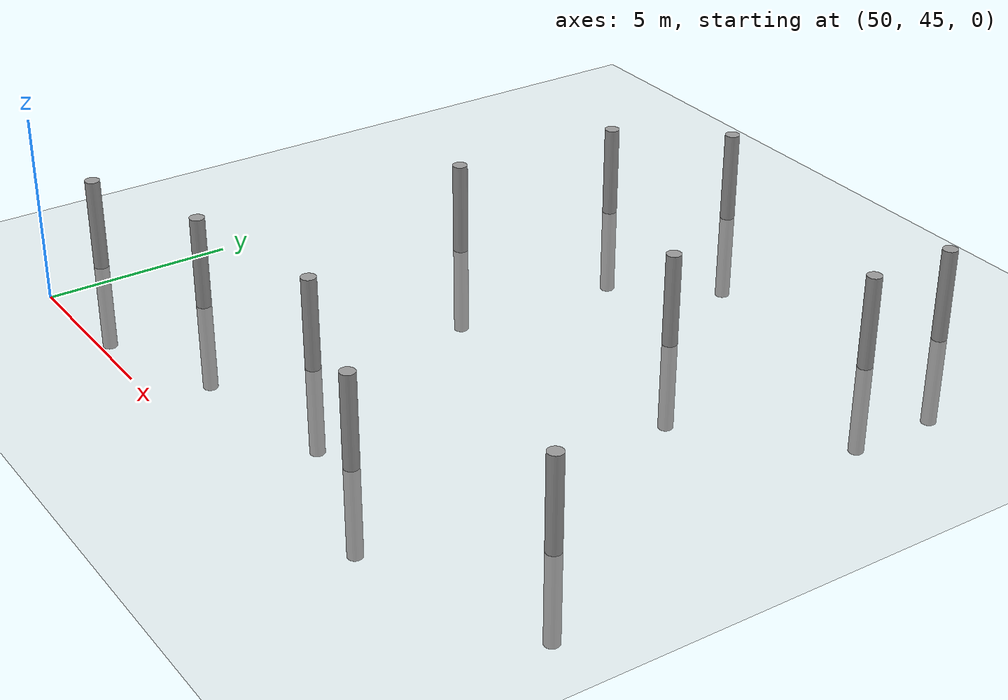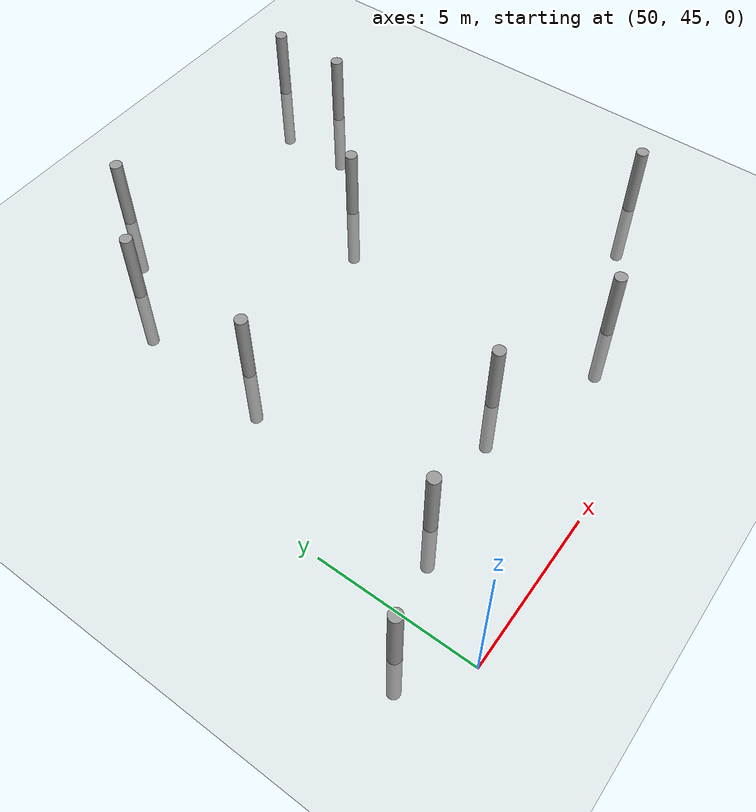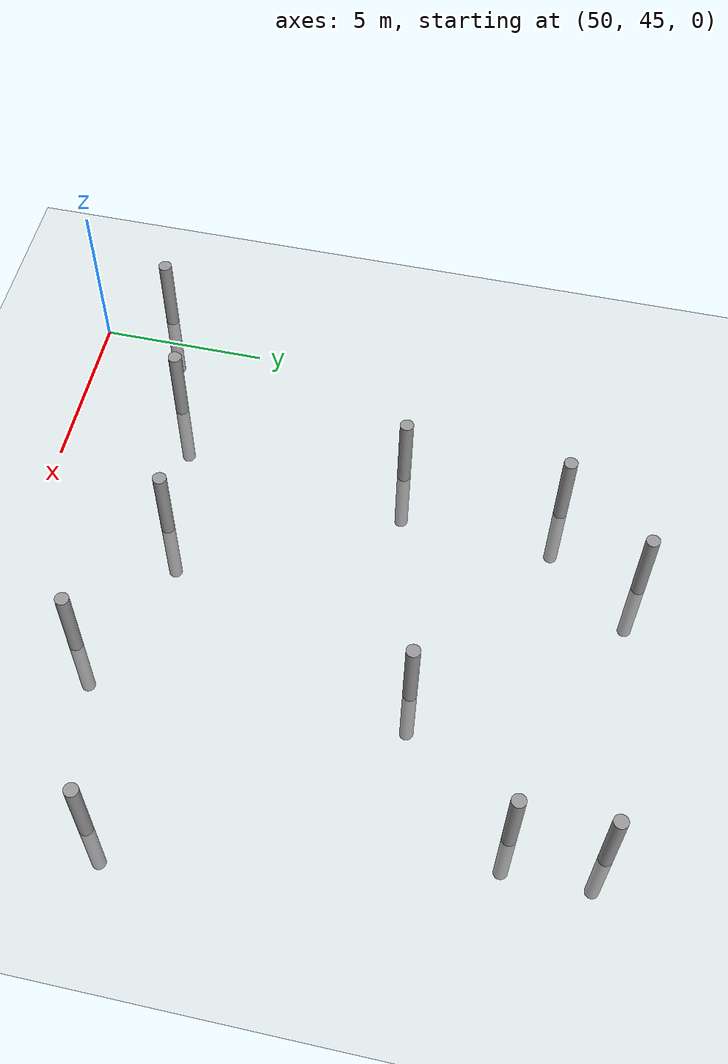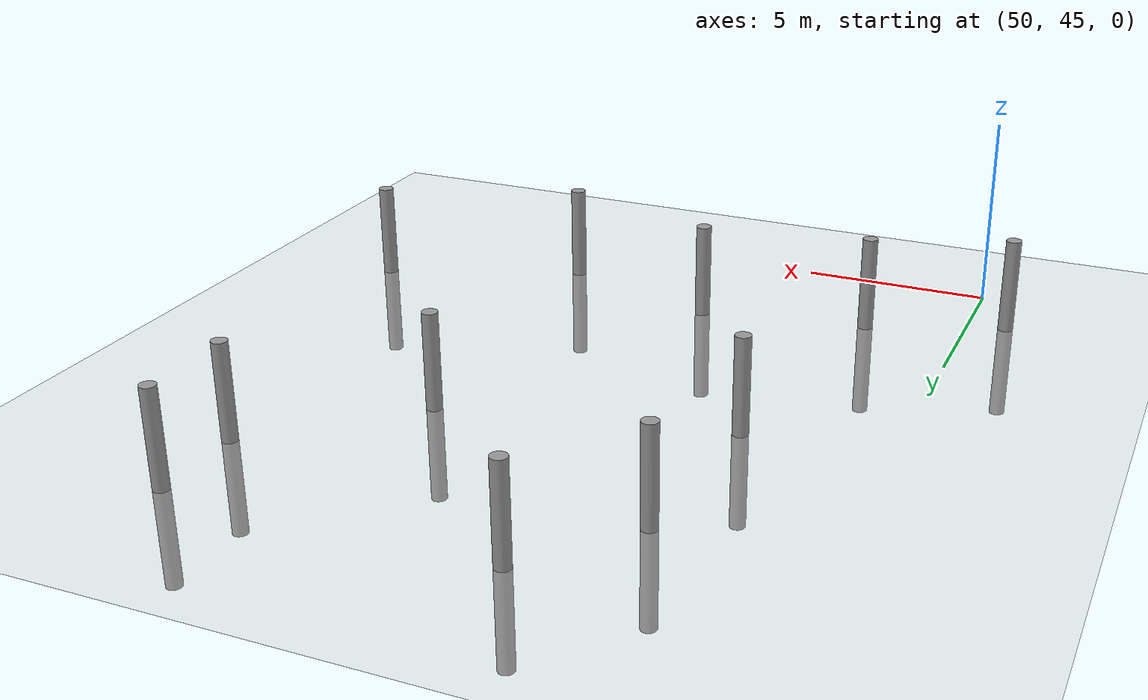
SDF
<sdf version="1.6">
 <world name="default">
  <model name="ground_plane">
   <static>1</static>
   <link name="link">
    <collision name="collision">
     <geometry><plane><normal>0 0 1</normal><size>100 100</size></plane></geometry>
     <surface><friction><ode><mu>100</mu><mu2>50</mu2></ode></friction></surface>
    </collision>
    <visual name="visual">
     <cast_shadows>0</cast_shadows>
     <geometry><plane><normal>0 0 1</normal><size>100 100</size></plane></geometry>
     <material>
      <script><uri>file://media/materials/scripts/gazebo.material</uri><name>Gazebo/Grey</name></script>
     </material>
    </visual>
   </link>
  </model>
  <model name="empty_pillars_2">
   <model name="empty_pillar_clone_13">
    <link name="link">
     <inertial>
      <mass>1</mass>
      <inertia><ixx>0.145833</ixx><ixy>0</ixy><ixz>0</ixz><iyy>0.145833</iyy><iyz>0</iyz><izz>0.125</izz></inertia>
     </inertial>
     <visual name="visual">
      <geometry><cylinder><radius>0.2</radius><length>5</length></cylinder></geometry>
      <material>
       <script><name>Gazebo/Grey</name><uri>file://media/materials/scripts/gazebo.material</uri></script>
       <shader type="vertex"><normal_map>__default__</normal_map></shader>
       <ambient>0.3 0.3 0.3 1</ambient>
       <diffuse>0.7 0.7 0.7 1</diffuse>
       <specular>0.01 0.01 0.01 1</specular>
       <emissive>0 0 0 1</emissive>
      </material>
     </visual>
     <collision name="collision">
      <geometry><cylinder><radius>0.05</radius><length>5</length></cylinder></geometry>
      <surface>
       <friction>
        <ode><mu>1</mu><mu2>1</mu2><fdir1>0 0 0</fdir1><slip1>0</slip1><slip2>0</slip2></ode>
        <torsional>
         <coefficient>1</coefficient>
         <patch_radius>0</patch_radius>
         <surface_radius>0</surface_radius>
         <use_patch_radius>1</use_patch_radius>
         <ode><slip>0</slip></ode>
        </torsional>
       </friction>
       <bounce><restitution_coefficient>0</restitution_coefficient><threshold>1e+06</threshold></bounce>
       <contact>
        <collide_without_contact>0</collide_without_contact>
        <collide_without_contact_bitmask>1</collide_without_contact_bitmask>
        <collide_bitmask>1</collide_bitmask>
        <ode>
         <soft_cfm>0</soft_cfm>
         <soft_erp>0.2</soft_erp>
         <kp>1e+13</kp>
         <kd>1</kd>
         <max_vel>0.01</max_vel>
         <min_depth>0</min_depth>
        </ode>
        <bullet>
         <split_impulse>1</split_impulse>
         <split_impulse_penetration_threshold>-0.01</split_impulse_penetration_threshold>
         <soft_cfm>0</soft_cfm>
         <soft_erp>0.2</soft_erp>
         <kp>1e+13</kp>
         <kd>1</kd>
        </bullet>
       </contact>
      </surface>
     </collision>
    </link>
    <static>0</static>
    <pose>-9.01464 -14.4259 0 0 -0 0</pose>
   </model>
   <model name="empty_pillar_clone_35">
    <link name="link">
     <inertial>
      <mass>1</mass>
      <inertia><ixx>0.145833</ixx><ixy>0</ixy><ixz>0</ixz><iyy>0.145833</iyy><iyz>0</iyz><izz>0.125</izz></inertia>
     </inertial>
     <visual name="visual">
      <geometry><cylinder><radius>0.2</radius><length>5</length></cylinder></geometry>
      <material>
       <script><name>Gazebo/Grey</name><uri>file://media/materials/scripts/gazebo.material</uri></script>
       <shader type="vertex"><normal_map>__default__</normal_map></shader>
       <ambient>0.3 0.3 0.3 1</ambient>
       <diffuse>0.7 0.7 0.7 1</diffuse>
       <specular>0.01 0.01 0.01 1</specular>
       <emissive>0 0 0 1</emissive>
      </material>
     </visual>
     <collision name="collision">
      <geometry><cylinder><radius>0.05</radius><length>5</length></cylinder></geometry>
      <surface>
       <friction>
        <ode><mu>1</mu><mu2>1</mu2><fdir1>0 0 0</fdir1><slip1>0</slip1><slip2>0</slip2></ode>
        <torsional>
         <coefficient>1</coefficient>
         <patch_radius>0</patch_radius>
         <surface_radius>0</surface_radius>
         <use_patch_radius>1</use_patch_radius>
         <ode><slip>0</slip></ode>
        </torsional>
       </friction>
       <bounce><restitution_coefficient>0</restitution_coefficient><threshold>1e+06</threshold></bounce>
       <contact>
        <collide_without_contact>0</collide_without_contact>
        <collide_without_contact_bitmask>1</collide_without_contact_bitmask>
        <collide_bitmask>1</collide_bitmask>
        <ode>
         <soft_cfm>0</soft_cfm>
         <soft_erp>0.2</soft_erp>
         <kp>1e+13</kp>
         <kd>1</kd>
         <max_vel>0.01</max_vel>
         <min_depth>0</min_depth>
        </ode>
        <bullet>
         <split_impulse>1</split_impulse>
         <split_impulse_penetration_threshold>-0.01</split_impulse_penetration_threshold>
         <soft_cfm>0</soft_cfm>
         <soft_erp>0.2</soft_erp>
         <kp>1e+13</kp>
         <kd>1</kd>
        </bullet>
       </contact>
      </surface>
     </collision>
    </link>
    <static>0</static>
    <pose>-19.4431 -17.0281 0 0 -0 0</pose>
   </model>
   <model name="empty_pillar_clone_40">
    <link name="link">
     <inertial>
      <mass>1</mass>
      <inertia><ixx>0.145833</ixx><ixy>0</ixy><ixz>0</ixz><iyy>0.145833</iyy><iyz>0</iyz><izz>0.125</izz></inertia>
     </inertial>
     <visual name="visual">
      <geometry><cylinder><radius>0.2</radius><length>5</length></cylinder></geometry>
      <material>
       <script><name>Gazebo/Grey</name><uri>file://media/materials/scripts/gazebo.material</uri></script>
       <shader type="vertex"><normal_map>__default__</normal_map></shader>
       <ambient>0.3 0.3 0.3 1</ambient>
       <diffuse>0.7 0.7 0.7 1</diffuse>
       <specular>0.01 0.01 0.01 1</specular>
       <emissive>0 0 0 1</emissive>
      </material>
     </visual>
     <collision name="collision">
      <geometry><cylinder><radius>0.05</radius><length>5</length></cylinder></geometry>
      <surface>
       <friction>
        <ode><mu>1</mu><mu2>1</mu2><fdir1>0 0 0</fdir1><slip1>0</slip1><slip2>0</slip2></ode>
        <torsional>
         <coefficient>1</coefficient>
         <patch_radius>0</patch_radius>
         <surface_radius>0</surface_radius>
         <use_patch_radius>1</use_patch_radius>
         <ode><slip>0</slip></ode>
        </torsional>
       </friction>
       <bounce><restitution_coefficient>0</restitution_coefficient><threshold>1e+06</threshold></bounce>
       <contact>
        <collide_without_contact>0</collide_without_contact>
        <collide_without_contact_bitmask>1</collide_without_contact_bitmask>
        <collide_bitmask>1</collide_bitmask>
        <ode>
         <soft_cfm>0</soft_cfm>
         <soft_erp>0.2</soft_erp>
         <kp>1e+13</kp>
         <kd>1</kd>
         <max_vel>0.01</max_vel>
         <min_depth>0</min_depth>
        </ode>
        <bullet>
         <split_impulse>1</split_impulse>
         <split_impulse_penetration_threshold>-0.01</split_impulse_penetration_threshold>
         <soft_cfm>0</soft_cfm>
         <soft_erp>0.2</soft_erp>
         <kp>1e+13</kp>
         <kd>1</kd>
        </bullet>
       </contact>
      </surface>
     </collision>
    </link>
    <static>0</static>
    <pose>-17.318 -14.4851 0 0 -0 0</pose>
   </model>
   <model name="empty_pillar_clone_42">
    <link name="link">
     <inertial>
      <mass>1</mass>
      <inertia><ixx>0.145833</ixx><ixy>0</ixy><ixz>0</ixz><iyy>0.145833</iyy><iyz>0</iyz><izz>0.125</izz></inertia>
     </inertial>
     <visual name="visual">
      <geometry><cylinder><radius>0.2</radius><length>5</length></cylinder></geometry>
      <material>
       <script><name>Gazebo/Grey</name><uri>file://media/materials/scripts/gazebo.material</uri></script>
       <shader type="vertex"><normal_map>__default__</normal_map></shader>
       <ambient>0.3 0.3 0.3 1</ambient>
       <diffuse>0.7 0.7 0.7 1</diffuse>
       <specular>0.01 0.01 0.01 1</specular>
       <emissive>0 0 0 1</emissive>
      </material>
     </visual>
     <collision name="collision">
      <geometry><cylinder><radius>0.05</radius><length>5</length></cylinder></geometry>
      <surface>
       <friction>
        <ode><mu>1</mu><mu2>1</mu2><fdir1>0 0 0</fdir1><slip1>0</slip1><slip2>0</slip2></ode>
        <torsional>
         <coefficient>1</coefficient>
         <patch_radius>0</patch_radius>
         <surface_radius>0</surface_radius>
         <use_patch_radius>1</use_patch_radius>
         <ode><slip>0</slip></ode>
        </torsional>
       </friction>
       <bounce><restitution_coefficient>0</restitution_coefficient><threshold>1e+06</threshold></bounce>
       <contact>
        <collide_without_contact>0</collide_without_contact>
        <collide_without_contact_bitmask>1</collide_without_contact_bitmask>
        <collide_bitmask>1</collide_bitmask>
        <ode>
         <soft_cfm>0</soft_cfm>
         <soft_erp>0.2</soft_erp>
         <kp>1e+13</kp>
         <kd>1</kd>
         <max_vel>0.01</max_vel>
         <min_depth>0</min_depth>
        </ode>
        <bullet>
         <split_impulse>1</split_impulse>
         <split_impulse_penetration_threshold>-0.01</split_impulse_penetration_threshold>
         <soft_cfm>0</soft_cfm>
         <soft_erp>0.2</soft_erp>
         <kp>1e+13</kp>
         <kd>1</kd>
        </bullet>
       </contact>
      </surface>
     </collision>
    </link>
    <static>0</static>
    <pose>-12.5409 -20.2416 0 0 -0 0</pose>
   </model>
   <model name="empty_pillar_clone_43">
    <link name="link">
     <inertial>
      <mass>1</mass>
      <inertia><ixx>0.145833</ixx><ixy>0</ixy><ixz>0</ixz><iyy>0.145833</iyy><iyz>0</iyz><izz>0.125</izz></inertia>
     </inertial>
     <visual name="visual">
      <geometry><cylinder><radius>0.2</radius><length>5</length></cylinder></geometry>
      <material>
       <script><name>Gazebo/Grey</name><uri>file://media/materials/scripts/gazebo.material</uri></script>
       <shader type="vertex"><normal_map>__default__</normal_map></shader>
       <ambient>0.3 0.3 0.3 1</ambient>
       <diffuse>0.7 0.7 0.7 1</diffuse>
       <specular>0.01 0.01 0.01 1</specular>
       <emissive>0 0 0 1</emissive>
      </material>
     </visual>
     <collision name="collision">
      <geometry><cylinder><radius>0.05</radius><length>5</length></cylinder></geometry>
      <surface>
       <friction>
        <ode><mu>1</mu><mu2>1</mu2><fdir1>0 0 0</fdir1><slip1>0</slip1><slip2>0</slip2></ode>
        <torsional>
         <coefficient>1</coefficient>
         <patch_radius>0</patch_radius>
         <surface_radius>0</surface_radius>
         <use_patch_radius>1</use_patch_radius>
         <ode><slip>0</slip></ode>
        </torsional>
       </friction>
       <bounce><restitution_coefficient>0</restitution_coefficient><threshold>1e+06</threshold></bounce>
       <contact>
        <collide_without_contact>0</collide_without_contact>
        <collide_without_contact_bitmask>1</collide_without_contact_bitmask>
        <collide_bitmask>1</collide_bitmask>
        <ode>
         <soft_cfm>0</soft_cfm>
         <soft_erp>0.2</soft_erp>
         <kp>1e+13</kp>
         <kd>1</kd>
         <max_vel>0.01</max_vel>
         <min_depth>0</min_depth>
        </ode>
        <bullet>
         <split_impulse>1</split_impulse>
         <split_impulse_penetration_threshold>-0.01</split_impulse_penetration_threshold>
         <soft_cfm>0</soft_cfm>
         <soft_erp>0.2</soft_erp>
         <kp>1e+13</kp>
         <kd>1</kd>
        </bullet>
       </contact>
      </surface>
     </collision>
    </link>
    <static>0</static>
    <pose>-19.7613 -21.8307 0 0 -0 0</pose>
   </model>
   <model name="empty_pillar_clone_45">
    <link name="link">
     <inertial>
      <mass>1</mass>
      <inertia><ixx>0.145833</ixx><ixy>0</ixy><ixz>0</ixz><iyy>0.145833</iyy><iyz>0</iyz><izz>0.125</izz></inertia>
     </inertial>
     <visual name="visual">
      <geometry><cylinder><radius>0.2</radius><length>5</length></cylinder></geometry>
      <material>
       <script><name>Gazebo/Grey</name><uri>file://media/materials/scripts/gazebo.material</uri></script>
       <shader type="vertex"><normal_map>__default__</normal_map></shader>
       <ambient>0.3 0.3 0.3 1</ambient>
       <diffuse>0.7 0.7 0.7 1</diffuse>
       <specular>0.01 0.01 0.01 1</specular>
       <emissive>0 0 0 1</emissive>
      </material>
     </visual>
     <collision name="collision">
      <geometry><cylinder><radius>0.05</radius><length>5</length></cylinder></geometry>
      <surface>
       <friction>
        <ode><mu>1</mu><mu2>1</mu2><fdir1>0 0 0</fdir1><slip1>0</slip1><slip2>0</slip2></ode>
        <torsional>
         <coefficient>1</coefficient>
         <patch_radius>0</patch_radius>
         <surface_radius>0</surface_radius>
         <use_patch_radius>1</use_patch_radius>
         <ode><slip>0</slip></ode>
        </torsional>
       </friction>
       <bounce><restitution_coefficient>0</restitution_coefficient><threshold>1e+06</threshold></bounce>
       <contact>
        <collide_without_contact>0</collide_without_contact>
        <collide_without_contact_bitmask>1</collide_without_contact_bitmask>
        <collide_bitmask>1</collide_bitmask>
        <ode>
         <soft_cfm>0</soft_cfm>
         <soft_erp>0.2</soft_erp>
         <kp>1e+13</kp>
         <kd>1</kd>
         <max_vel>0.01</max_vel>
         <min_depth>0</min_depth>
        </ode>
        <bullet>
         <split_impulse>1</split_impulse>
         <split_impulse_penetration_threshold>-0.01</split_impulse_penetration_threshold>
         <soft_cfm>0</soft_cfm>
         <soft_erp>0.2</soft_erp>
         <kp>1e+13</kp>
         <kd>1</kd>
        </bullet>
       </contact>
      </surface>
     </collision>
    </link>
    <static>0</static>
    <pose>-9.01076 -16.9307 0 0 -0 0</pose>
   </model>
   <static>0</static>
   <pose>73.3006 77.2503 0 0 -0 0</pose>
  </model>
  <model name="empty_pillars_3">
   <model name="empty_pillar_clone_20">
    <link name="link">
     <inertial>
      <mass>1</mass>
      <inertia><ixx>0.145833</ixx><ixy>0</ixy><ixz>0</ixz><iyy>0.145833</iyy><iyz>0</iyz><izz>0.125</izz></inertia>
     </inertial>
     <visual name="visual">
      <geometry><cylinder><radius>0.2</radius><length>5</length></cylinder></geometry>
      <material>
       <script><name>Gazebo/Grey</name><uri>file://media/materials/scripts/gazebo.material</uri></script>
       <shader type="vertex"><normal_map>__default__</normal_map></shader>
       <ambient>0.3 0.3 0.3 1</ambient>
       <diffuse>0.7 0.7 0.7 1</diffuse>
       <specular>0.01 0.01 0.01 1</specular>
       <emissive>0 0 0 1</emissive>
      </material>
     </visual>
     <collision name="collision">
      <geometry><cylinder><radius>0.05</radius><length>5</length></cylinder></geometry>
      <surface>
       <friction>
        <ode><mu>1</mu><mu2>1</mu2><fdir1>0 0 0</fdir1><slip1>0</slip1><slip2>0</slip2></ode>
        <torsional>
         <coefficient>1</coefficient>
         <patch_radius>0</patch_radius>
         <surface_radius>0</surface_radius>
         <use_patch_radius>1</use_patch_radius>
         <ode><slip>0</slip></ode>
        </torsional>
       </friction>
       <bounce><restitution_coefficient>0</restitution_coefficient><threshold>1e+06</threshold></bounce>
       <contact>
        <collide_without_contact>0</collide_without_contact>
        <collide_without_contact_bitmask>1</collide_without_contact_bitmask>
        <collide_bitmask>1</collide_bitmask>
        <ode>
         <soft_cfm>0</soft_cfm>
         <soft_erp>0.2</soft_erp>
         <kp>1e+13</kp>
         <kd>1</kd>
         <max_vel>0.01</max_vel>
         <min_depth>0</min_depth>
        </ode>
        <bullet>
         <split_impulse>1</split_impulse>
         <split_impulse_penetration_threshold>-0.01</split_impulse_penetration_threshold>
         <soft_cfm>0</soft_cfm>
         <soft_erp>0.2</soft_erp>
         <kp>1e+13</kp>
         <kd>1</kd>
        </bullet>
       </contact>
      </surface>
     </collision>
    </link>
    <static>0</static>
    <pose>-13.0146 19.1597 0 0 -0 0</pose>
   </model>
   <model name="empty_pillar_clone_21">
    <link name="link">
     <inertial>
      <mass>1</mass>
      <inertia><ixx>0.145833</ixx><ixy>0</ixy><ixz>0</ixz><iyy>0.145833</iyy><iyz>0</iyz><izz>0.125</izz></inertia>
     </inertial>
     <visual name="visual">
      <geometry><cylinder><radius>0.2</radius><length>5</length></cylinder></geometry>
      <material>
       <script><name>Gazebo/Grey</name><uri>file://media/materials/scripts/gazebo.material</uri></script>
       <shader type="vertex"><normal_map>__default__</normal_map></shader>
       <ambient>0.3 0.3 0.3 1</ambient>
       <diffuse>0.7 0.7 0.7 1</diffuse>
       <specular>0.01 0.01 0.01 1</specular>
       <emissive>0 0 0 1</emissive>
      </material>
     </visual>
     <collision name="collision">
      <geometry><cylinder><radius>0.05</radius><length>5</length></cylinder></geometry>
      <surface>
       <friction>
        <ode><mu>1</mu><mu2>1</mu2><fdir1>0 0 0</fdir1><slip1>0</slip1><slip2>0</slip2></ode>
        <torsional>
         <coefficient>1</coefficient>
         <patch_radius>0</patch_radius>
         <surface_radius>0</surface_radius>
         <use_patch_radius>1</use_patch_radius>
         <ode><slip>0</slip></ode>
        </torsional>
       </friction>
       <bounce><restitution_coefficient>0</restitution_coefficient><threshold>1e+06</threshold></bounce>
       <contact>
        <collide_without_contact>0</collide_without_contact>
        <collide_without_contact_bitmask>1</collide_without_contact_bitmask>
        <collide_bitmask>1</collide_bitmask>
        <ode>
         <soft_cfm>0</soft_cfm>
         <soft_erp>0.2</soft_erp>
         <kp>1e+13</kp>
         <kd>1</kd>
         <max_vel>0.01</max_vel>
         <min_depth>0</min_depth>
        </ode>
        <bullet>
         <split_impulse>1</split_impulse>
         <split_impulse_penetration_threshold>-0.01</split_impulse_penetration_threshold>
         <soft_cfm>0</soft_cfm>
         <soft_erp>0.2</soft_erp>
         <kp>1e+13</kp>
         <kd>1</kd>
        </bullet>
       </contact>
      </surface>
     </collision>
    </link>
    <static>0</static>
    <pose>-21.7273 19.7662 0 0 -0 0</pose>
   </model>
   <model name="empty_pillar_clone_22">
    <link name="link">
     <inertial>
      <mass>1</mass>
      <inertia><ixx>0.145833</ixx><ixy>0</ixy><ixz>0</ixz><iyy>0.145833</iyy><iyz>0</iyz><izz>0.125</izz></inertia>
     </inertial>
     <visual name="visual">
      <geometry><cylinder><radius>0.2</radius><length>5</length></cylinder></geometry>
      <material>
       <script><name>Gazebo/Grey</name><uri>file://media/materials/scripts/gazebo.material</uri></script>
       <shader type="vertex"><normal_map>__default__</normal_map></shader>
       <ambient>0.3 0.3 0.3 1</ambient>
       <diffuse>0.7 0.7 0.7 1</diffuse>
       <specular>0.01 0.01 0.01 1</specular>
       <emissive>0 0 0 1</emissive>
      </material>
     </visual>
     <collision name="collision">
      <geometry><cylinder><radius>0.05</radius><length>5</length></cylinder></geometry>
      <surface>
       <friction>
        <ode><mu>1</mu><mu2>1</mu2><fdir1>0 0 0</fdir1><slip1>0</slip1><slip2>0</slip2></ode>
        <torsional>
         <coefficient>1</coefficient>
         <patch_radius>0</patch_radius>
         <surface_radius>0</surface_radius>
         <use_patch_radius>1</use_patch_radius>
         <ode><slip>0</slip></ode>
        </torsional>
       </friction>
       <bounce><restitution_coefficient>0</restitution_coefficient><threshold>1e+06</threshold></bounce>
       <contact>
        <collide_without_contact>0</collide_without_contact>
        <collide_without_contact_bitmask>1</collide_without_contact_bitmask>
        <collide_bitmask>1</collide_bitmask>
        <ode>
         <soft_cfm>0</soft_cfm>
         <soft_erp>0.2</soft_erp>
         <kp>1e+13</kp>
         <kd>1</kd>
         <max_vel>0.01</max_vel>
         <min_depth>0</min_depth>
        </ode>
        <bullet>
         <split_impulse>1</split_impulse>
         <split_impulse_penetration_threshold>-0.01</split_impulse_penetration_threshold>
         <soft_cfm>0</soft_cfm>
         <soft_erp>0.2</soft_erp>
         <kp>1e+13</kp>
         <kd>1</kd>
        </bullet>
       </contact>
      </surface>
     </collision>
    </link>
    <static>0</static>
    <pose>-17.3667 20.5782 0 0 -0 0</pose>
   </model>
   <model name="empty_pillar_clone_25">
    <link name="link">
     <inertial>
      <mass>1</mass>
      <inertia><ixx>0.145833</ixx><ixy>0</ixy><ixz>0</ixz><iyy>0.145833</iyy><iyz>0</iyz><izz>0.125</izz></inertia>
     </inertial>
     <visual name="visual">
      <geometry><cylinder><radius>0.2</radius><length>5</length></cylinder></geometry>
      <material>
       <script><name>Gazebo/Grey</name><uri>file://media/materials/scripts/gazebo.material</uri></script>
       <shader type="vertex"><normal_map>__default__</normal_map></shader>
       <ambient>0.3 0.3 0.3 1</ambient>
       <diffuse>0.7 0.7 0.7 1</diffuse>
       <specular>0.01 0.01 0.01 1</specular>
       <emissive>0 0 0 1</emissive>
      </material>
     </visual>
     <collision name="collision">
      <geometry><cylinder><radius>0.05</radius><length>5</length></cylinder></geometry>
      <surface>
       <friction>
        <ode><mu>1</mu><mu2>1</mu2><fdir1>0 0 0</fdir1><slip1>0</slip1><slip2>0</slip2></ode>
        <torsional>
         <coefficient>1</coefficient>
         <patch_radius>0</patch_radius>
         <surface_radius>0</surface_radius>
         <use_patch_radius>1</use_patch_radius>
         <ode><slip>0</slip></ode>
        </torsional>
       </friction>
       <bounce><restitution_coefficient>0</restitution_coefficient><threshold>1e+06</threshold></bounce>
       <contact>
        <collide_without_contact>0</collide_without_contact>
        <collide_without_contact_bitmask>1</collide_without_contact_bitmask>
        <collide_bitmask>1</collide_bitmask>
        <ode>
         <soft_cfm>0</soft_cfm>
         <soft_erp>0.2</soft_erp>
         <kp>1e+13</kp>
         <kd>1</kd>
         <max_vel>0.01</max_vel>
         <min_depth>0</min_depth>
        </ode>
        <bullet>
         <split_impulse>1</split_impulse>
         <split_impulse_penetration_threshold>-0.01</split_impulse_penetration_threshold>
         <soft_cfm>0</soft_cfm>
         <soft_erp>0.2</soft_erp>
         <kp>1e+13</kp>
         <kd>1</kd>
        </bullet>
       </contact>
      </surface>
     </collision>
    </link>
    <static>0</static>
    <pose>-7.86239 21.1314 0 0 -0 0</pose>
   </model>
   <static>0</static>
   <pose>74.2615 28.3982 0 0 -0 0</pose>
  </model>
  <model name="empty_pillars_4">
   <model name="empty_pillar_clone_30">
    <link name="link">
     <inertial>
      <mass>1</mass>
      <inertia><ixx>0.145833</ixx><ixy>0</ixy><ixz>0</ixz><iyy>0.145833</iyy><iyz>0</iyz><izz>0.125</izz></inertia>
     </inertial>
     <visual name="visual">
      <geometry><cylinder><radius>0.2</radius><length>5</length></cylinder></geometry>
      <material>
       <script><name>Gazebo/Grey</name><uri>file://media/materials/scripts/gazebo.material</uri></script>
       <shader type="vertex"><normal_map>__default__</normal_map></shader>
       <ambient>0.3 0.3 0.3 1</ambient>
       <diffuse>0.7 0.7 0.7 1</diffuse>
       <specular>0.01 0.01 0.01 1</specular>
       <emissive>0 0 0 1</emissive>
      </material>
     </visual>
     <collision name="collision">
      <geometry><cylinder><radius>0.05</radius><length>5</length></cylinder></geometry>
      <surface>
       <friction>
        <ode><mu>1</mu><mu2>1</mu2><fdir1>0 0 0</fdir1><slip1>0</slip1><slip2>0</slip2></ode>
        <torsional>
         <coefficient>1</coefficient>
         <patch_radius>0</patch_radius>
         <surface_radius>0</surface_radius>
         <use_patch_radius>1</use_patch_radius>
         <ode><slip>0</slip></ode>
        </torsional>
       </friction>
       <bounce><restitution_coefficient>0</restitution_coefficient><threshold>1e+06</threshold></bounce>
       <contact>
        <collide_without_contact>0</collide_without_contact>
        <collide_without_contact_bitmask>1</collide_without_contact_bitmask>
        <collide_bitmask>1</collide_bitmask>
        <ode>
         <soft_cfm>0</soft_cfm>
         <soft_erp>0.2</soft_erp>
         <kp>1e+13</kp>
         <kd>1</kd>
         <max_vel>0.01</max_vel>
         <min_depth>0</min_depth>
        </ode>
        <bullet>
         <split_impulse>1</split_impulse>
         <split_impulse_penetration_threshold>-0.01</split_impulse_penetration_threshold>
         <soft_cfm>0</soft_cfm>
         <soft_erp>0.2</soft_erp>
         <kp>1e+13</kp>
         <kd>1</kd>
        </bullet>
       </contact>
      </surface>
     </collision>
    </link>
    <static>0</static>
    <pose>23.752 19.2231 0 0 -0 0</pose>
   </model>
   <static>0</static>
   <pose>25.2837 27.6164 0 0 -0 0</pose>
  </model>
 </world>
</sdf>
